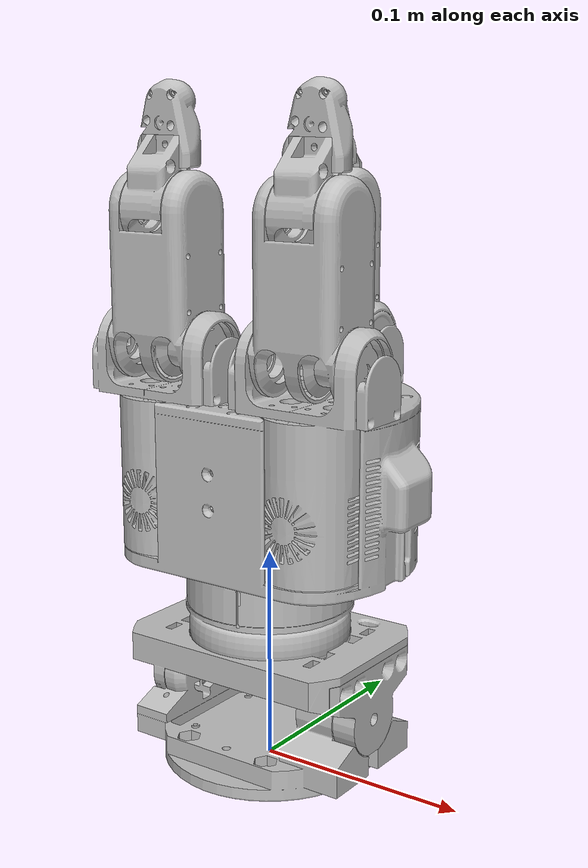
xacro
<?xml version="1.0" ?>
<robot name="hand_h" xmlns:xacro="http://ros.org/wiki/xacro">
  <link name="H1_base_attach"/>
  <xacro:include filename="$(find fh_description)/hand/xacro/0x02000101/0x02000101.xacro" />
  <xacro:include filename="$(find fh_description)/hand/xacro/0x02000102/0x02000102.xacro" />
  <xacro:include filename="$(find fh_description)/hand/xacro/0x02000103/0x02000103.xacro" />

  <xacro:macro_0x02000103 part_id="WR" hand_id="H1" parent="H1_base_attach" transmission="true">
    <origin xyz="0 0 0" rpy="0 0 0"/>
  </xacro:macro_0x02000103>

  <xacro:macro_0x02000102 part_id="H1" parent="H1_WR_face_plate" transmission="true" f1_angle="0" f2_angle="0" f3_angle="0">
    <origin xyz="0 0 0" rpy="0 0 0"/>
  </xacro:macro_0x02000102>

  <xacro:macro_0x02000101 part_id="F1" hand_id="H1" transmission="true">
    <origin xyz="0 0 0" rpy="0 0 0"/>
  </xacro:macro_0x02000101>

  <xacro:macro_0x02000101 part_id="F2" hand_id="H1" transmission="true">
    <origin xyz="0 0 0" rpy="0 0 0"/>
  </xacro:macro_0x02000101>

  <xacro:macro_0x02000101 part_id="F3" hand_id="H1" transmission="true">
    <origin xyz="0 0 0" rpy="0 0 0"/>
  </xacro:macro_0x02000101>
</robot>

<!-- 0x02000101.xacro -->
<robot xmlns:xacro="http://ros.org/wiki/xacro">
  <xacro:include filename="$(find fh_description)/common/optoforce.xacro" />

  <xacro:macro name="macro_0x02000101" params="part_id hand_id transmission *origin">
    <link name="${hand_id}_${part_id}_base_link">
      <inertial>
        <origin xyz="-0.00016975101978813 0.00197421910589327 0.0561457825889687" rpy="0 0 0" />
        <mass value="0.206184327436554" />
        <inertia ixx="0.000196208681085273" ixy="7.25965267883658E-08" ixz="-1.42989296818671E-06"
                 iyy="0.00022500240306659" iyz="-8.62726850629812E-06" izz="7.34501911009421E-05" />
      </inertial>
      <xacro:mesh_visual file_name="base_link.stl">
        <origin xyz="0 0 0" rpy="0 0 0" />
        <xacro:light_grey/>
      </xacro:mesh_visual>
      <xacro:mesh_collision file_name="base_link.stl">
        <origin xyz="0 0 0" rpy="0 0 0" />
        <xacro:light_grey/>
      </xacro:mesh_collision>
    </link>

    <link name="${hand_id}_${part_id}_link_1">
      <inertial>
        <origin xyz="-0.000237426002648366 -0.000311474464416824 0.02717870175844" rpy="0 0 0" />
        <mass value="0.148439137620102" />
        <inertia ixx="7.87590932011867E-05" ixy="-2.09812809718026E-08" ixz="-4.7018912298647E-07"
                 iyy="9.21180950643254E-05" iyz="1.02291530412464E-06" izz="4.38404666397581E-05" />
      </inertial>
      <xacro:mesh_visual file_name="prox.stl">
        <origin xyz="0 0 0" rpy="0 0 0"/>
        <xacro:light_grey/>
      </xacro:mesh_visual>
      <xacro:mesh_collision file_name="prox.stl">
        <origin xyz="0 0 0" rpy="0 0 0"/>
        <xacro:light_grey/>
      </xacro:mesh_collision>
    </link>

    <link name="${hand_id}_${part_id}_link_2">
      <inertial>
        <origin xyz="0.000688458734451483 -0.00121669160147178 0.0179379664791534" rpy="0 0 0" />
        <mass value="0.0468986964963515" />
        <inertia ixx="1.66577929038936E-05" ixy="1.91370536767985E-09" ixz="-7.90963473136566E-07"
                 iyy="1.65880289089031E-05" iyz="-2.10962265976158E-06" izz="5.79382496615135E-06" />
      </inertial>
      <xacro:mesh_visual file_name="dist.stl">
        <origin xyz="0 0 0" rpy="0 0 0"/>
        <xacro:light_grey/>
      </xacro:mesh_visual>
      <xacro:mesh_collision file_name="dist.stl">
        <origin xyz="0 0 0" rpy="0 0 0"/>
        <xacro:light_grey/>
      </xacro:mesh_collision>
    </link>

    <joint name="${hand_id}_${part_id}Base" type="fixed">
      <origin xyz="0 0 0" rpy="0 0 0" />
      <parent link="${hand_id}_insert_${part_id}"/>
      <child link="${hand_id}_${part_id}_base_link"/>
    </joint>

    <joint name="${hand_id}_${part_id}J1" type="revolute">
      <origin xyz="0 0 0.096" rpy="0 0 0" />
      <parent link="${hand_id}_${part_id}_base_link"/>
      <child link="${hand_id}_${part_id}_link_1"/>
      <axis xyz="1 0 0" />
      <limit lower="-${pi/2}" upper="1.0472" effort="2" velocity="1.0" />
      <dynamics damping="0.1"/>
    </joint>

    <joint name="${hand_id}_${part_id}J2" type="revolute">
      <origin xyz="0 0 0.06" rpy="0 0 0" />
      <axis xyz="1 0 0" />
      <parent link="${hand_id}_${part_id}_link_1"/>
      <child link="${hand_id}_${part_id}_link_2"/>
      <limit lower="-1.04716" upper="1.57075" effort="2" velocity="1.0" />
      <dynamics damping="0.01"/>
    </joint>

    <xacro:if value="${transmission}">
      <xacro:transmission_ joint_name="${hand_id}_${part_id}J1" interface="EffortJointInterface"/>
      <xacro:transmission_ joint_name="${hand_id}_${part_id}J2" interface="EffortJointInterface"/>
    </xacro:if>

      <!-- finger tip -->
    <xacro:optoforce_d18 part_id="${hand_id}_${part_id}"/>
    <joint name="${hand_id}_${part_id}_tip" type="fixed">
      <parent link="${hand_id}_${part_id}_link_2"/>
      <child link="${hand_id}_${part_id}_tip"/>
    </joint>

  </xacro:macro>
</robot>

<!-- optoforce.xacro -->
<robot xmlns:xacro="http://ros.org/wiki/xacro">
  <xacro:macro name="optoforce_d18" params="part_id">
  <link name="${part_id}_tip">
    <inertial>
      <origin xyz="-0.000925580990320645 -0.00495543398528436 0.0355865585792753" rpy="0 0 0"/>
      <mass value="0.00906322686585137" />
      <inertia ixx="1.10049088227995E-06" ixy="-3.7290982171096E-09" ixz="-9.54389365908683E-09"
        iyy="1.36130530510584E-06" iyz="6.66133713720777E-08" izz="6.42259773618367E-07" />
    </inertial>
    <xacro:mesh_visual file_name="omd-d18-tip.stl">
        <origin xyz="0 0 0" rpy="0 0 0" />
        <xacro:light_grey/>
    </xacro:mesh_visual>
    <xacro:mesh_collision file_name="omd-d18-tip.stl">
        <origin xyz="0 0 0" rpy="0 0 0"/>
        <xacro:light_grey/>
    </xacro:mesh_collision>
  </link>
  <link name="${part_id}_optoforce"/>
  <joint name="${part_id}_tip_to_optoforce" type="fixed">
    <parent link="${part_id}_tip"/>
    <child link="${part_id}_optoforce"/>
    <origin xyz="0 -0.006 0.046" rpy="-0.35 0 0" />
  </joint>
  </xacro:macro>
</robot>

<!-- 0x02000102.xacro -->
<robot xmlns:xacro="http://ros.org/wiki/xacro">
  <xacro:include filename="$(find fh_description)/common/common.xacro" />
  <xacro:include filename="$(find fh_description)/common/materials.xacro" />
  <xacro:include filename="$(find fh_description)/common/gazebo.xacro"/>
  <xacro:macro name="macro_0x02000102" params="part_id parent transmission f1_angle f2_angle f3_angle *origin">
    <link name="${part_id}_base_link">
      <inertial>
        <origin xyz="0.000167074827019974 0.017647639199748 0.0354392421665256" rpy="0 0 0" />
        <mass value="0.802291302622713" />
        <inertia ixx="0.00268740968940699" ixy="-2.63877052807301E-06" ixz="8.21876760057436E-06"
                 iyy="0.00273884664780255" iyz="0.000454017867570455" izz="0.00145589837379105" />
      </inertial>
      <xacro:mesh_visual file_name="palm_base.stl">
        <origin xyz="0 0 0" rpy="0 0 0"/>
        <xacro:light_grey/>
      </xacro:mesh_visual>
      <xacro:mesh_collision file_name="palm_base.stl">
        <origin xyz="0 0 0" rpy="0 0 0"/>
        <xacro:light_grey/>
      </xacro:mesh_collision>
    </link>

    <joint name="${part_id}Base" type="fixed">
       <insert_block name="origin"/>
       <parent link="${parent}"/>
       <child link="${part_id}_wrist_attach"/>
    </joint>

    <link name="${part_id}_insert_F1"/>

    <joint name="${part_id}_dummy_joint_1" type="fixed">
      <origin xyz="0 0.045 0.002" rpy="0 0 ${f1_angle}" />
      <parent link="${part_id}_base_link" />
      <child link="${part_id}_insert_F1" />
    </joint>

    <link name="${part_id}_insert_F2"/>

    <joint name="${part_id}_dummy_joint_2" type="fixed">
      <origin xyz="0.038971 -0.0225 0.002" rpy="0 0 ${pi + f2_angle}" />
      <parent link="${part_id}_base_link" />
      <child link="${part_id}_insert_F2" />
    </joint>

    <link name="${part_id}_insert_F3"/>

    <joint name="${part_id}_dummy_joint_3" type="fixed">
      <origin xyz="-0.038971 -0.0225 0.002" rpy="0 0 ${pi + f3_angle}" />
      <parent link="${part_id}_base_link" />
      <child link="${part_id}_insert_F3" />
    </joint>

    <link name="${part_id}_wrist_attach"/>

    <joint name="${part_id}_base_link_wrist_attach"  type="fixed">
      <origin xyz="0 0 -0.0005" rpy="0 0 0" />
      <child link="${part_id}_base_link" />
      <parent link="${part_id}_wrist_attach" />
    </joint>
  </xacro:macro>
</robot>

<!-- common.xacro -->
<robot xmlns:xacro="http://ros.org/wiki/xacro">
  <xacro:macro name="light_grey" >
    <material name="light_grey">
      <color rgba="0.75 0.75 0.75 1.0" />
    </material>
  </xacro:macro>

  <xacro:property name="pi" value="3.1415926535897931"/>
  <xacro:property name="sqrt_2" value="1.414213562"/>

  <xacro:macro name="cylinder_inertia" params="mass radius height *origin">
    <inertial>
      <xacro:insert_block name="origin" />
      <mass value="${mass}" />
      <inertia  ixx="${(3*radius*radius + height*height)*mass/12}" ixy="0.0" ixz="0.0"
                iyy="${(3*radius*radius + height*height)*mass/12}" iyz="0.0"
                izz="${radius*radius*mass/2}" />
    </inertial>
  </xacro:macro>

  <xacro:macro name="cylinder_geometry" params="name radius height">
    <geometry name="${name}">
      <cylinder length="${height}" radius="${radius}"/>
    </geometry>
  </xacro:macro>

  <xacro:macro name="cylinder_collision" params="name radius height *origin">
    <collision>
      <xacro:insert_block name="origin" />
      <xacro:cylinder_geometry name="${name}" radius="${radius}" height="${height}"/>
    </collision>
  </xacro:macro>

  <xacro:macro name="cylinder_visual" params="name radius height *origin *material">
    <visual>
      <xacro:insert_block name="origin" />
      <xacro:cylinder_geometry name="${name}" radius="${radius}" height="${height}"/>
      <xacro:insert_block name="material" />
    </visual>
  </xacro:macro>

  <xacro:macro name="full_cylinder" params="name mass radius height *origin *material">
    <xacro:cylinder_inertia mass="${mass}" radius="${radius}" height="${height}">
      <xacro:insert_block name="origin"/>
    </xacro:cylinder_inertia>

    <xacro:cylinder_visual name="${name}_visual" radius="${radius}" height="${height}">
      <xacro:insert_block name="origin"/>
      <xacro:insert_block name="material"/>
    </xacro:cylinder_visual>

    <xacro:cylinder_collision name="${name}_collision" radius="${radius}" height="${height}">
      <xacro:insert_block name="origin"/>
    </xacro:cylinder_collision>
  </xacro:macro>

  <xacro:macro name="box_inertia" params="mass width depth height *origin">
    <inertial>
      <xacro:insert_block name="origin" />
      <mass value="${mass}" />
      <inertia  ixx="${(height*height + depth*depth)*mass/12}" ixy="0.0" ixz="0.0"
                iyy="${(height*height + width*width)*mass/12}" iyz="0.0"
                izz="${(width*width + depth*depth)*mass/12}" />
    </inertial>
  </xacro:macro>

  <xacro:macro name="box_geometry" params="name width depth height">
    <geometry name="${name}">
      <box size="${width} ${depth} ${height}"/>
    </geometry>
  </xacro:macro>

  <xacro:macro name="box_collision" params="name width depth height *origin">
    <collision>
      <xacro:insert_block name="origin" />
      <xacro:box_geometry name="${name}" width="${width}" depth="${depth}" height="${height}"/>
    </collision>
  </xacro:macro>

  <xacro:macro name="box_visual" params="name width depth height *origin *material">
    <visual>
      <xacro:insert_block name="origin" />
      <xacro:box_geometry name="${name}" width="${width}" depth="${depth}" height="${height}"/>
      <xacro:insert_block name="material" />
    </visual>
  </xacro:macro>

  <xacro:macro name="mesh_geometry" params="file_name">
    <geometry>
      <mesh filename="package://fh_description/meshes/${file_name}"/>
    </geometry>
  </xacro:macro>

  <xacro:macro name="mesh_visual" params="file_name *origin *material">
    <visual>
      <xacro:insert_block name="origin"/>
      <xacro:mesh_geometry file_name="${file_name}"/>
      <xacro:insert_block name="material"/>
    </visual>
  </xacro:macro>

  <xacro:macro name="mesh_collision" params="file_name *origin *material">
    <collision>
      <xacro:insert_block name="origin"/>
      <xacro:mesh_geometry file_name="${file_name}"/>
      <xacro:insert_block name="material"/>
    </collision>
  </xacro:macro>

  <xacro:macro name="transmission_" params="joint_name interface">
    <transmission name="${joint_name}_transmission">
    <type>transmission_interface/SimpleTransmission</type>
      <actuator name="${joint_name}">
        <mechanicalReduction>1</mechanicalReduction>
      </actuator>
    <joint name="${joint_name}">
      <hardwareInterface>${interface}</hardwareInterface>
    </joint>
    </transmission>
  </xacro:macro>

</robot>

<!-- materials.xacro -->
<robot>
  <material name="Blue">
    <color rgba="0.0 0.0 0.8 1.0" />
  </material>
  <material name="Green">
    <color rgba="0.0 0.8 0.0 1.0" />
  </material>
  <material name="BiotacGreen">
    <color rgba="0.31 0.85 0.42 1.0" />
  </material>
  <material name="Grey">
    <color rgba="0.2 0.2 0.2 1.0" />
  </material>
  <material name="LightGrey">
    <color rgba="0.6 0.6 0.6 1.0" />
  </material>
  <material name="Red">
    <color rgba="0.8 0.0 0.0 1.0" />
  </material>
  <material name="White">
    <color rgba="1.0 1.0 1.0 1.0" />
  </material>
</robot>

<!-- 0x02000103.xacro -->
<robot xmlns:xacro="http://ros.org/wiki/xacro">
  <xacro:macro name="macro_0x02000103" params="part_id hand_id parent transmission *origin">
    <link name="${hand_id}_${part_id}_wrist_base">
      <inertial>
        <origin xyz="0.00326865129997316 -4.64589898998213E-06 0.0112847129271115" rpy="0 0 0" />
        <mass value="0.126266795472122" />
        <inertia ixx="7.45469352483292E-05" ixy="6.02324465005139E-09" ixz="7.48046652661961E-07"
                 iyy="0.000152711306761993" iyz="2.66777152755212E-09" izz="0.000201286651417327" />
      </inertial>
      <xacro:mesh_visual file_name="wrist_base.stl">
        <origin xyz="0 0 0" rpy="0 0 0" />
        <xacro:light_grey/>
      </xacro:mesh_visual>
      <xacro:mesh_collision file_name="wrist_base.stl">
        <origin xyz="0 0 0" rpy="0 0 0" />
        <xacro:light_grey/>
      </xacro:mesh_collision>
    </link>

    <link name="${hand_id}_${part_id}_wrist">
      <inertial>
        <origin xyz="0.00160957599422527 -0.000629300457080406 0.0174740198321096" rpy="0 0 0" />
        <mass value="0.111982108931474" />
        <inertia ixx="7.18014678375949E-05" ixy="-9.11325601281988E-07" ixz="-2.80734883420538E-06"
          iyy="0.000184429517814393" iyz="-2.43285388562761E-07" izz="0.000238392777579217" />
      </inertial>
      <xacro:mesh_visual file_name="wrist.stl">
        <origin xyz="0 0 0" rpy="0 0 0" />
        <xacro:light_grey/>
      </xacro:mesh_visual>
      <xacro:mesh_collision file_name="wrist.stl">
        <origin xyz="0 0 0" rpy="0 0 0" />
        <xacro:light_grey/>
      </xacro:mesh_collision>
    </link>

    <joint name="${hand_id}_${part_id}J1" type="revolute">
      <origin xyz="0 0 0.032" rpy="0 0 0" />
      <parent link="${hand_id}_${part_id}_wrist_base" />
      <child link="${hand_id}_${part_id}_wrist" />
      <axis xyz="-1 0 0" />
      <limit lower="-0.785" upper="0.785" effort="20" velocity="0.1" />
      <dynamic  damping="0.005" friction="0.005"/>
    </joint>

    <link name="${hand_id}_${part_id}_force_torque_sensor">
      <inertial>
        <origin xyz="-2.94070736140857E-06 6.43877814287904E-05 0.0247092180043537" rpy="0 0 0" />
        <mass value="0.0975991645938483" />
        <inertia ixx="6.20729230428078E-05" ixy="-1.64643097783638E-08" ixz="-3.24429596458139E-08"
          iyy="6.18050372756729E-05" iyz="1.29139184791137E-08" izz="8.23283621428637E-05" />
      </inertial>
      <xacro:mesh_visual file_name="force_torque_sensor.stl">
        <origin xyz="0 0 0" rpy="0 0 0" />
        <xacro:light_grey/>
      </xacro:mesh_visual>
      <xacro:mesh_collision file_name="force_torque_sensor.stl">
        <origin xyz="0 0 0" rpy="0 0 0" />
        <xacro:light_grey/>
      </xacro:mesh_collision>
    </link>

    <link name="${hand_id}_${part_id}_face_plate"/>

    <joint name="${hand_id}_${part_id}_wrist_to_ft_sensor" type="fixed">
      <origin xyz="0 0 0.015" rpy="0 0 0" />
      <parent link="${hand_id}_${part_id}_wrist" />
      <child link="${hand_id}_${part_id}_force_torque_sensor" />
    </joint>

    <joint name="${hand_id}_${part_id}_wrist_base" type="fixed">
      <insert_block name="origin"/>
      <parent link="${parent}" />
      <child link="${hand_id}_${part_id}_wrist_base" />
    </joint>

    <joint name="${hand_id}_${part_id}ft_sensor_to_faceplate" type="fixed">
      <origin xyz="0 0 0.0505" rpy="0 0 0" />
      <parent link="${hand_id}_${part_id}_force_torque_sensor" />
      <child link="${hand_id}_${part_id}_face_plate" />
    </joint>

    <xacro:if value="${transmission}">
      <xacro:transmission_ joint_name="${hand_id}_${part_id}J1" interface="EffortJointInterface"/>
    </xacro:if>
  </xacro:macro>
</robot>
